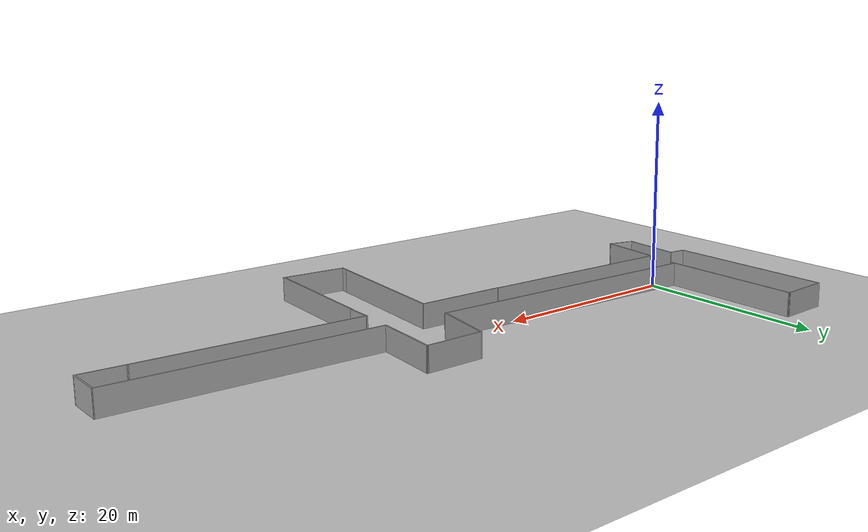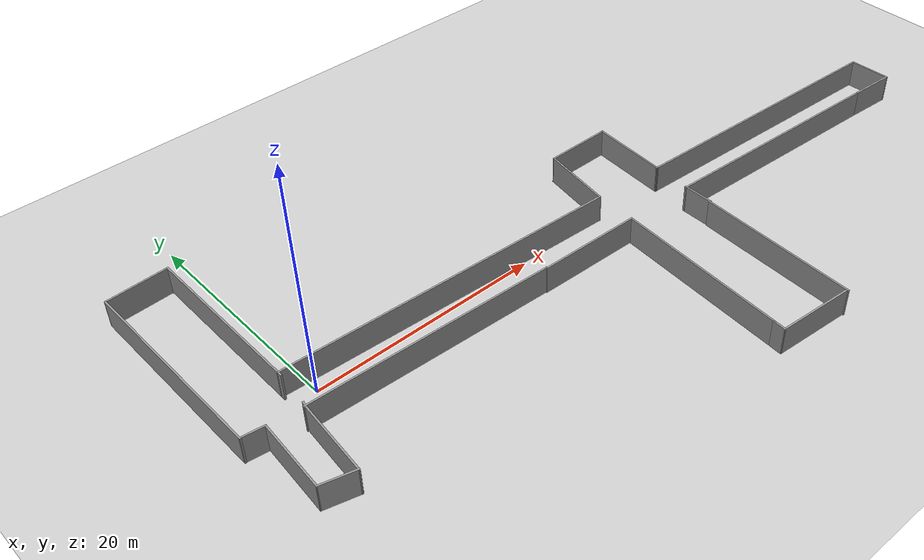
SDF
<sdf version="1.7">
 <world name="default">
  <light name="sun" type="directional">
   <pose>0 0 10 0 -0 0</pose>
   <diffuse>0.8 0.8 0.8 1</diffuse>
   <specular>0.2 0.2 0.2 1</specular>
   <attenuation>
    <range>1000</range>
    <constant>0.9</constant>
    <linear>0.01</linear>
    <quadratic>0.001</quadratic>
   </attenuation>
   <direction>-0.5 0.1 -0.9</direction>
   <spot><inner_angle>0</inner_angle><outer_angle>0</outer_angle><falloff>0</falloff></spot>
  </light>
  <model name="ground_plane">
   <static>1</static>
   <link name="link">
    <collision name="collision">
     <geometry><plane><normal>0 0 1</normal><size>100 100</size></plane></geometry>
     <surface>
      <contact><collide_bitmask>65535</collide_bitmask></contact>
      <friction><ode><mu>100</mu><mu2>50</mu2></ode></friction>
     </surface>
    </collision>
    <visual name="visual">
     <cast_shadows>0</cast_shadows>
     <geometry><plane><normal>0 0 1</normal><size>100 100</size></plane></geometry>
     <material>
      <script><uri>file://media/materials/scripts/gazebo.material</uri><name>Gazebo/Grey</name></script>
     </material>
    </visual>
   </link>
  </model>
  <gravity>0 0 -9.8</gravity>
  <magnetic_field>6e-06 2.3e-05 -4.2e-05</magnetic_field>
  <atmosphere type="adiabatic"/>
  <physics type="ode">
   <max_step_size>0.001</max_step_size>
   <real_time_factor>1</real_time_factor>
   <real_time_update_rate>1000</real_time_update_rate>
  </physics>
  <scene><ambient>0.4 0.4 0.4 1</ambient><background>0.7 0.7 0.7 1</background><shadows>1</shadows></scene>
  <spherical_coordinates>
   <surface_model>EARTH_WGS84</surface_model>
   <latitude_deg>0</latitude_deg>
   <longitude_deg>0</longitude_deg>
   <elevation>0</elevation>
   <heading_deg>0</heading_deg>
  </spherical_coordinates>
  <model name="second_floor">
   <pose>26.4512 -2.26425 0 0 -0 0</pose>
   <link name="Wall_0">
    <collision name="Wall_0_Collision">
     <geometry><box><size>21.672 0.15 2.5</size></box></geometry>
     <pose>0 0 1.25 0 -0 0</pose>
    </collision>
    <visual name="Wall_0_Visual">
     <pose>0 0 1.25 0 -0 0</pose>
     <geometry><box><size>21.672 0.15 2.5</size></box></geometry>
     <material>
      <script><uri>file://media/materials/scripts/gazebo.material</uri><name>Gazebo/Grey</name></script>
      <ambient>1 1 1 1</ambient>
     </material>
     <meta><layer>0</layer></meta>
    </visual>
    <pose>-18.1938 -0.762922 0 0 -0 -0.041963</pose>
   </link>
   <link name="Wall_10">
    <collision name="Wall_10_Collision">
     <geometry><box><size>15.3373 0.15 2.5</size></box></geometry>
     <pose>0 0 1.25 0 -0 0</pose>
    </collision>
    <visual name="Wall_10_Visual">
     <pose>0 0 1.25 0 -0 0</pose>
     <geometry><box><size>15.3373 0.15 2.5</size></box></geometry>
     <material>
      <script><uri>file://media/materials/scripts/gazebo.material</uri><name>Gazebo/Grey</name></script>
      <ambient>1 1 1 1</ambient>
     </material>
     <meta><layer>0</layer></meta>
    </visual>
    <pose>1.056 -9.21184 0 0 -0 -1.6357</pose>
   </link>
   <link name="Wall_12">
    <collision name="Wall_12_Collision">
     <geometry><box><size>1.18848 0.15 2.5</size></box></geometry>
     <pose>0 0 1.25 0 -0 0</pose>
    </collision>
    <visual name="Wall_12_Visual">
     <pose>0 0 1.25 0 -0 0</pose>
     <geometry><box><size>1.18848 0.15 2.5</size></box></geometry>
     <material>
      <script><uri>file://media/materials/scripts/gazebo.material</uri><name>Gazebo/Grey</name></script>
      <ambient>1 1 1 1</ambient>
     </material>
     <meta><layer>0</layer></meta>
    </visual>
    <pose>0.528316 -17.2145 0 0 -0 -1.6386</pose>
   </link>
   <link name="Wall_14">
    <collision name="Wall_14_Collision">
     <geometry><box><size>6.85488 0.15 2.5</size></box></geometry>
     <pose>0 0 1.25 0 -0 0</pose>
    </collision>
    <visual name="Wall_14_Visual">
     <pose>0 0 1.25 0 -0 0</pose>
     <geometry><box><size>6.85488 0.15 2.5</size></box></geometry>
     <material>
      <script><uri>file://media/materials/scripts/gazebo.material</uri><name>Gazebo/Grey</name></script>
      <ambient>1 1 1 1</ambient>
     </material>
     <meta><layer>0</layer></meta>
    </visual>
    <pose>3.83359 -18.0158 0 0 -0 -0.084573</pose>
   </link>
   <link name="Wall_16">
    <collision name="Wall_16_Collision">
     <geometry><box><size>14.1546 0.15 2.5</size></box></geometry>
     <pose>0 0 1.25 0 -0 0</pose>
    </collision>
    <visual name="Wall_16_Visual">
     <pose>0 0 1.25 0 -0 0</pose>
     <geometry><box><size>14.1546 0.15 2.5</size></box></geometry>
     <material>
      <script><uri>file://media/materials/scripts/gazebo.material</uri><name>Gazebo/Grey</name></script>
      <ambient>1 1 1 1</ambient>
     </material>
     <meta><layer>0</layer></meta>
    </visual>
    <pose>7.44668 -11.3829 0 0 -0 1.53185</pose>
   </link>
   <link name="Wall_18">
    <collision name="Wall_18_Collision">
     <geometry><box><size>2.78143 0.15 2.5</size></box></geometry>
     <pose>0 0 1.25 0 -0 0</pose>
    </collision>
    <visual name="Wall_18_Visual">
     <pose>0 0 1.25 0 -0 0</pose>
     <geometry><box><size>2.78143 0.15 2.5</size></box></geometry>
     <material>
      <script><uri>file://media/materials/scripts/gazebo.material</uri><name>Gazebo/Grey</name></script>
      <ambient>1 1 1 1</ambient>
     </material>
     <meta><layer>0</layer></meta>
    </visual>
    <pose>7.78968 -3.07014 0 0 -0 1.5708</pose>
   </link>
   <link name="Wall_23">
    <collision name="Wall_23_Collision">
     <geometry><box><size>22.026 0.15 2.5</size></box></geometry>
     <pose>0 0 1.25 0 -0 0</pose>
    </collision>
    <visual name="Wall_23_Visual">
     <pose>0 0 1.25 0 -0 0</pose>
     <geometry><box><size>22.026 0.15 2.5</size></box></geometry>
     <material>
      <script><uri>file://media/materials/scripts/gazebo.material</uri><name>Gazebo/Grey</name></script>
      <ambient>1 1 1 1</ambient>
     </material>
     <meta><layer>0</layer></meta>
    </visual>
    <pose>18.7093 -2.458 0 0 -0 -0.057924</pose>
   </link>
   <link name="Wall_24">
    <collision name="Wall_24_Collision">
     <geometry><box><size>4.25965 0.15 2.5</size></box></geometry>
     <pose>0 0 1.25 0 -0 0</pose>
    </collision>
    <visual name="Wall_24_Visual">
     <pose>0 0 1.25 0 -0 0</pose>
     <geometry><box><size>4.25965 0.15 2.5</size></box></geometry>
     <material>
      <script><uri>file://media/materials/scripts/gazebo.material</uri><name>Gazebo/Grey</name></script>
      <ambient>1 1 1 1</ambient>
     </material>
     <meta><layer>0</layer></meta>
    </visual>
    <pose>31.679 -3.23194 0 0 -0 -0.068534</pose>
   </link>
   <link name="Wall_26">
    <collision name="Wall_26_Collision">
     <geometry><box><size>3.79342 0.15 2.5</size></box></geometry>
     <pose>0 0 1.25 0 -0 0</pose>
    </collision>
    <visual name="Wall_26_Visual">
     <pose>0 0 1.25 0 -0 0</pose>
     <geometry><box><size>3.79342 0.15 2.5</size></box></geometry>
     <material>
      <script><uri>file://media/materials/scripts/gazebo.material</uri><name>Gazebo/Grey</name></script>
      <ambient>1 1 1 1</ambient>
     </material>
     <meta><layer>0</layer></meta>
    </visual>
    <pose>33.676 -1.55171 0 0 -0 1.59992</pose>
   </link>
   <link name="Wall_27">
    <collision name="Wall_27_Collision">
     <geometry><box><size>25.8484 0.15 2.5</size></box></geometry>
     <pose>0 0 1.25 0 -0 0</pose>
    </collision>
    <visual name="Wall_27_Visual">
     <pose>0 0 1.25 0 -0 0</pose>
     <geometry><box><size>25.8484 0.15 2.5</size></box></geometry>
     <material>
      <script><uri>file://media/materials/scripts/gazebo.material</uri><name>Gazebo/Grey</name></script>
      <ambient>1 1 1 1</ambient>
     </material>
     <meta><layer>0</layer></meta>
    </visual>
    <pose>20.7914 0.943296 0 0 -0 3.08911</pose>
   </link>
   <link name="Wall_28">
    <collision name="Wall_28_Collision">
     <geometry><box><size>7.00175 0.15 2.5</size></box></geometry>
     <pose>0 0 1.25 0 -0 0</pose>
    </collision>
    <visual name="Wall_28_Visual">
     <pose>0 0 1.25 0 -0 0</pose>
     <geometry><box><size>7.00175 0.15 2.5</size></box></geometry>
     <material>
      <script><uri>file://media/materials/scripts/gazebo.material</uri><name>Gazebo/Grey</name></script>
      <ambient>1 1 1 1</ambient>
     </material>
     <meta><layer>0</layer></meta>
    </visual>
    <pose>8.1622 5.03727 0 0 -0 1.51172</pose>
   </link>
   <link name="Wall_29">
    <collision name="Wall_29_Collision">
     <geometry><box><size>5.94089 0.15 2.5</size></box></geometry>
     <pose>0 0 1.25 0 -0 0</pose>
    </collision>
    <visual name="Wall_29_Visual">
     <pose>0 0 1.25 0 -0 0</pose>
     <geometry><box><size>5.94089 0.15 2.5</size></box></geometry>
     <material>
      <script><uri>file://media/materials/scripts/gazebo.material</uri><name>Gazebo/Grey</name></script>
      <ambient>1 1 1 1</ambient>
     </material>
     <meta><layer>0</layer></meta>
    </visual>
    <pose>5.46903 8.45717 0 0 -0 3.14159</pose>
   </link>
   <link name="Wall_3">
    <collision name="Wall_3_Collision">
     <geometry><box><size>9.14445 0.15 2.5</size></box></geometry>
     <pose>0 0 1.25 0 -0 0</pose>
    </collision>
    <visual name="Wall_3_Visual">
     <pose>0 0 1.25 0 -0 0</pose>
     <geometry><box><size>9.14445 0.15 2.5</size></box></geometry>
     <material>
      <script><uri>file://media/materials/scripts/gazebo.material</uri><name>Gazebo/Grey</name></script>
      <ambient>1 1 1 1</ambient>
     </material>
     <meta><layer>0</layer></meta>
    </visual>
    <pose>-2.9469 -1.41291 0 0 -0 -0.028511</pose>
   </link>
   <link name="Wall_30">
    <collision name="Wall_30_Collision">
     <geometry><box><size>6.54714 0.15 2.5</size></box></geometry>
     <pose>0 0 1.25 0 -0 0</pose>
    </collision>
    <visual name="Wall_30_Visual">
     <pose>0 0 1.25 0 -0 0</pose>
     <geometry><box><size>6.54714 0.15 2.5</size></box></geometry>
     <material>
      <script><uri>file://media/materials/scripts/gazebo.material</uri><name>Gazebo/Grey</name></script>
      <ambient>1 1 1 1</ambient>
     </material>
     <meta><layer>0</layer></meta>
    </visual>
    <pose>2.12295 5.2905 0 0 -0 -1.71215</pose>
   </link>
   <link name="Wall_31">
    <collision name="Wall_31_Collision">
     <geometry><box><size>30.3148 0.15 2.5</size></box></geometry>
     <pose>0 0 1.25 0 -0 0</pose>
    </collision>
    <visual name="Wall_31_Visual">
     <pose>0 0 1.25 0 -0 0</pose>
     <geometry><box><size>30.3148 0.15 2.5</size></box></geometry>
     <material>
      <script><uri>file://media/materials/scripts/gazebo.material</uri><name>Gazebo/Grey</name></script>
      <ambient>1 1 1 1</ambient>
     </material>
     <meta><layer>0</layer></meta>
    </visual>
    <pose>-13.3937 2.82668 0 0 -0 3.09497</pose>
   </link>
   <link name="Wall_32">
    <collision name="Wall_32_Collision">
     <geometry><box><size>15 0.15 2.5</size></box></geometry>
     <pose>0 0 1.25 0 -0 0</pose>
    </collision>
    <visual name="Wall_32_Visual">
     <pose>0 0 1.25 0 -0 0</pose>
     <geometry><box><size>15 0.15 2.5</size></box></geometry>
     <material>
      <script><uri>file://media/materials/scripts/gazebo.material</uri><name>Gazebo/Grey</name></script>
      <ambient>1 1 1 1</ambient>
     </material>
     <meta><layer>0</layer></meta>
    </visual>
    <pose>-28.4597 10.9545 0 0 -0 1.5708</pose>
   </link>
   <link name="Wall_33">
    <collision name="Wall_33_Collision">
     <geometry><box><size>5.42606 0.15 2.5</size></box></geometry>
     <pose>0 0 1.25 0 -0 0</pose>
    </collision>
    <visual name="Wall_33_Visual">
     <pose>0 0 1.25 0 -0 0</pose>
     <geometry><box><size>5.42606 0.15 2.5</size></box></geometry>
     <material>
      <script><uri>file://media/materials/scripts/gazebo.material</uri><name>Gazebo/Grey</name></script>
      <ambient>1 1 1 1</ambient>
     </material>
     <meta><layer>0</layer></meta>
    </visual>
    <pose>-31.0952 18.265 0 0 -0 -3.09816</pose>
   </link>
   <link name="Wall_34">
    <collision name="Wall_34_Collision">
     <geometry><box><size>18.0376 0.15 2.5</size></box></geometry>
     <pose>0 0 1.25 0 -0 0</pose>
    </collision>
    <visual name="Wall_34_Visual">
     <pose>0 0 1.25 0 -0 0</pose>
     <geometry><box><size>18.0376 0.15 2.5</size></box></geometry>
     <material>
      <script><uri>file://media/materials/scripts/gazebo.material</uri><name>Gazebo/Grey</name></script>
      <ambient>1 1 1 1</ambient>
     </material>
     <meta><layer>0</layer></meta>
    </visual>
    <pose>-33.6752 9.17122 0 0 -0 -1.56458</pose>
   </link>
   <link name="Wall_36">
    <collision name="Wall_36_Collision">
     <geometry><box><size>7.01366 0.15 2.5</size></box></geometry>
     <pose>0 0 1.25 0 -0 0</pose>
    </collision>
    <visual name="Wall_36_Visual">
     <pose>0 0 1.25 0 -0 0</pose>
     <geometry><box><size>7.01366 0.15 2.5</size></box></geometry>
     <material>
      <script><uri>file://media/materials/scripts/gazebo.material</uri><name>Gazebo/Grey</name></script>
      <ambient>1 1 1 1</ambient>
     </material>
     <meta><layer>0</layer></meta>
    </visual>
    <pose>-29.1625 -3.73031 0 0 -0 1.48369</pose>
   </link>
   <link name="Wall_38">
    <collision name="Wall_38_Collision">
     <geometry><box><size>3 0.15 2.5</size></box></geometry>
     <pose>0 0 1.25 0 -0 0</pose>
    </collision>
    <visual name="Wall_38_Visual">
     <pose>0 0 1.25 0 -0 0</pose>
     <geometry><box><size>3 0.15 2.5</size></box></geometry>
     <material>
      <script><uri>file://media/materials/scripts/gazebo.material</uri><name>Gazebo/Grey</name></script>
      <ambient>1 1 1 1</ambient>
     </material>
     <meta><layer>0</layer></meta>
    </visual>
    <pose>-30.8375 -6.78031 0 0 -0 2.87979</pose>
   </link>
   <link name="Wall_39">
    <collision name="Wall_39_Collision">
     <geometry><box><size>6.60362 0.15 2.5</size></box></geometry>
     <pose>0 0 1.25 0 -0 0</pose>
    </collision>
    <visual name="Wall_39_Visual">
     <pose>0 0 1.25 0 -0 0</pose>
     <geometry><box><size>6.60362 0.15 2.5</size></box></geometry>
     <material>
      <script><uri>file://media/materials/scripts/gazebo.material</uri><name>Gazebo/Grey</name></script>
      <ambient>1 1 1 1</ambient>
     </material>
     <meta><layer>0</layer></meta>
    </visual>
    <pose>-31.9929 -3.19227 0 0 -0 1.50222</pose>
   </link>
   <link name="Wall_42">
    <collision name="Wall_42_Collision">
     <geometry><box><size>0.5 0.15 2.5</size></box></geometry>
     <pose>0 0 1.25 0 -0 0</pose>
    </collision>
    <visual name="Wall_42_Visual">
     <pose>0 0 1.25 0 -0 0</pose>
     <geometry><box><size>0.5 0.15 2.5</size></box></geometry>
     <material>
      <script><uri>file://media/materials/scripts/gazebo.material</uri><name>Gazebo/Grey</name></script>
      <ambient>1 1 1 1</ambient>
     </material>
     <meta><layer>0</layer></meta>
    </visual>
    <pose>-28.4597 3.35454 0 0 -0 -1.5708</pose>
   </link>
   <link name="Wall_44">
    <collision name="Wall_44_Collision">
     <geometry><box><size>0.5 0.15 2.5</size></box></geometry>
     <pose>0 0 1.25 0 -0 0</pose>
    </collision>
    <visual name="Wall_44_Visual">
     <pose>0 0 1.25 0 -0 0</pose>
     <geometry><box><size>0.5 0.15 2.5</size></box></geometry>
     <material>
      <script><uri>file://media/materials/scripts/gazebo.material</uri><name>Gazebo/Grey</name></script>
      <ambient>1 1 1 1</ambient>
     </material>
     <meta><layer>0</layer></meta>
    </visual>
    <pose>-28.8187 -0.142455 0 0 -0 1.309</pose>
   </link>
   <link name="Wall_46">
    <collision name="Wall_46_Collision">
     <geometry><box><size>1.9953 0.15 2.5</size></box></geometry>
     <pose>0 0 1.25 0 -0 0</pose>
    </collision>
    <visual name="Wall_46_Visual">
     <pose>0 0 1.25 0 -0 0</pose>
     <geometry><box><size>1.9953 0.15 2.5</size></box></geometry>
     <material>
      <script><uri>file://media/materials/scripts/gazebo.material</uri><name>Gazebo/Grey</name></script>
      <ambient>1 1 1 1</ambient>
     </material>
     <meta><layer>0</layer></meta>
    </visual>
    <pose>-32.7045 0.145061 0 0 -0 -0.12836</pose>
   </link>
   <static>1</static>
  </model>
  <light name="user_spot_light_1" type="spot">
   <pose>20.9352 -1.75312 1 0 -0 0</pose>
   <diffuse>0.5 0.5 0.5 1</diffuse>
   <specular>0.1 0.1 0.1 1</specular>
   <direction>0 0 -1</direction>
   <attenuation>
    <range>20</range>
    <constant>0.5</constant>
    <linear>0.01</linear>
    <quadratic>0.001</quadratic>
   </attenuation>
   <cast_shadows>0</cast_shadows>
   <spot><inner_angle>0.6</inner_angle><outer_angle>1</outer_angle><falloff>1</falloff></spot>
  </light>
  <light name="user_spot_light_2" type="spot">
   <pose>28.3634 -2.92922 1 0 -0 0</pose>
   <diffuse>0.5 0.5 0.5 1</diffuse>
   <specular>0.1 0.1 0.1 1</specular>
   <direction>0 0 -1</direction>
   <attenuation>
    <range>20</range>
    <constant>0.5</constant>
    <linear>0.01</linear>
    <quadratic>0.001</quadratic>
   </attenuation>
   <cast_shadows>0</cast_shadows>
   <spot><inner_angle>0.6</inner_angle><outer_angle>1</outer_angle><falloff>1</falloff></spot>
  </light>
  <light name="user_spot_light_3" type="spot">
   <pose>28.7557 -5.72228 1 0 -0 0</pose>
   <diffuse>0.5 0.5 0.5 1</diffuse>
   <specular>0.1 0.1 0.1 1</specular>
   <direction>0 0 -1</direction>
   <attenuation>
    <range>20</range>
    <constant>0.5</constant>
    <linear>0.01</linear>
    <quadratic>0.001</quadratic>
   </attenuation>
   <cast_shadows>0</cast_shadows>
   <spot><inner_angle>0.6</inner_angle><outer_angle>1</outer_angle><falloff>1</falloff></spot>
  </light>
  <light name="user_spot_light_4" type="spot">
   <pose>-4.38984 1.19534 1 0 -0 0</pose>
   <diffuse>0.5 0.5 0.5 1</diffuse>
   <specular>0.1 0.1 0.1 1</specular>
   <direction>0 0 -1</direction>
   <attenuation>
    <range>20</range>
    <constant>0.5</constant>
    <linear>0.01</linear>
    <quadratic>0.001</quadratic>
   </attenuation>
   <cast_shadows>0</cast_shadows>
   <spot><inner_angle>0.6</inner_angle><outer_angle>1</outer_angle><falloff>1</falloff></spot>
  </light>
  <light name="user_spot_light_5" type="spot">
   <pose>-5.18287 4.23615 1 0 -0 0</pose>
   <diffuse>0.5 0.5 0.5 1</diffuse>
   <specular>0.1 0.1 0.1 1</specular>
   <direction>0 0 -1</direction>
   <attenuation>
    <range>20</range>
    <constant>0.5</constant>
    <linear>0.01</linear>
    <quadratic>0.001</quadratic>
   </attenuation>
   <cast_shadows>0</cast_shadows>
   <spot><inner_angle>0.6</inner_angle><outer_angle>1</outer_angle><falloff>1</falloff></spot>
  </light>
  <light name="user_spot_light_6" type="spot">
   <pose>-5.49158 7.97088 1 0 -0 0</pose>
   <diffuse>0.5 0.5 0.5 1</diffuse>
   <specular>0.1 0.1 0.1 1</specular>
   <direction>0 0 -1</direction>
   <attenuation>
    <range>20</range>
    <constant>0.5</constant>
    <linear>0.01</linear>
    <quadratic>0.001</quadratic>
   </attenuation>
   <cast_shadows>0</cast_shadows>
   <spot><inner_angle>0.6</inner_angle><outer_angle>1</outer_angle><falloff>1</falloff></spot>
  </light>
  <light name="user_spot_light_7" type="spot">
   <pose>-4.35442 -0.822652 1 0 -0 0</pose>
   <diffuse>0.5 0.5 0.5 1</diffuse>
   <specular>0.1 0.1 0.1 1</specular>
   <direction>0 0 -1</direction>
   <attenuation>
    <range>20</range>
    <constant>0.5</constant>
    <linear>0.01</linear>
    <quadratic>0.001</quadratic>
   </attenuation>
   <cast_shadows>0</cast_shadows>
   <spot><inner_angle>0.6</inner_angle><outer_angle>1</outer_angle><falloff>1</falloff></spot>
  </light>
  <light name="user_spot_light_8" type="spot">
   <pose>-1.77318 -0.411451 1 0 -0 0</pose>
   <diffuse>0.5 0.5 0.5 1</diffuse>
   <specular>0.1 0.1 0.1 1</specular>
   <direction>0 0 -1</direction>
   <attenuation>
    <range>20</range>
    <constant>0.5</constant>
    <linear>0.01</linear>
    <quadratic>0.001</quadratic>
   </attenuation>
   <cast_shadows>0</cast_shadows>
   <spot><inner_angle>0.6</inner_angle><outer_angle>1</outer_angle><falloff>1</falloff></spot>
  </light>
  <light name="user_spot_light_9" type="spot">
   <pose>30.1848 -5.64446 1 0 -0 0</pose>
   <diffuse>0.5 0.5 0.5 1</diffuse>
   <specular>0.1 0.1 0.1 1</specular>
   <direction>0 0 -1</direction>
   <attenuation>
    <range>20</range>
    <constant>0.5</constant>
    <linear>0.01</linear>
    <quadratic>0.001</quadratic>
   </attenuation>
   <cast_shadows>0</cast_shadows>
   <spot><inner_angle>0.6</inner_angle><outer_angle>1</outer_angle><falloff>1</falloff></spot>
  </light>
  <light name="user_spot_light_10" type="spot">
   <pose>30.4579 -3.75696 1 0 -0 0</pose>
   <diffuse>0.5 0.5 0.5 1</diffuse>
   <specular>0.1 0.1 0.1 1</specular>
   <direction>0 0 -1</direction>
   <attenuation>
    <range>20</range>
    <constant>0.5</constant>
    <linear>0.01</linear>
    <quadratic>0.001</quadratic>
   </attenuation>
   <cast_shadows>0</cast_shadows>
   <spot><inner_angle>0.6</inner_angle><outer_angle>1</outer_angle><falloff>1</falloff></spot>
  </light>
  <light name="user_spot_light_11" type="spot">
   <pose>30.2297 -1.50992 1 0 -0 0</pose>
   <diffuse>0.5 0.5 0.5 1</diffuse>
   <specular>0.1 0.1 0.1 1</specular>
   <direction>0 0 -1</direction>
   <attenuation>
    <range>20</range>
    <constant>0.5</constant>
    <linear>0.01</linear>
    <quadratic>0.001</quadratic>
   </attenuation>
   <cast_shadows>0</cast_shadows>
   <spot><inner_angle>0.6</inner_angle><outer_angle>1</outer_angle><falloff>1</falloff></spot>
  </light>
  <light name="user_spot_light_0" type="spot">
   <pose>-4.28325 8.63713 1 0 -0 0</pose>
   <diffuse>0.5 0.5 0.5 1</diffuse>
   <specular>0.1 0.1 0.1 1</specular>
   <direction>0 0 -1</direction>
   <attenuation>
    <range>20</range>
    <constant>0.5</constant>
    <linear>0.01</linear>
    <quadratic>0.001</quadratic>
   </attenuation>
   <cast_shadows>0</cast_shadows>
   <spot><inner_angle>0.6</inner_angle><outer_angle>1</outer_angle><falloff>1</falloff></spot>
  </light>
  <light name="user_spot_light_12" type="spot">
   <pose>-6.58478 9.427 1 0 -0 0</pose>
   <diffuse>0.5 0.5 0.5 1</diffuse>
   <specular>0.1 0.1 0.1 1</specular>
   <direction>0 0 -1</direction>
   <attenuation>
    <range>20</range>
    <constant>0.5</constant>
    <linear>0.01</linear>
    <quadratic>0.001</quadratic>
   </attenuation>
   <cast_shadows>0</cast_shadows>
   <spot><inner_angle>0.6</inner_angle><outer_angle>1</outer_angle><falloff>1</falloff></spot>
  </light>
 </world>
</sdf>
